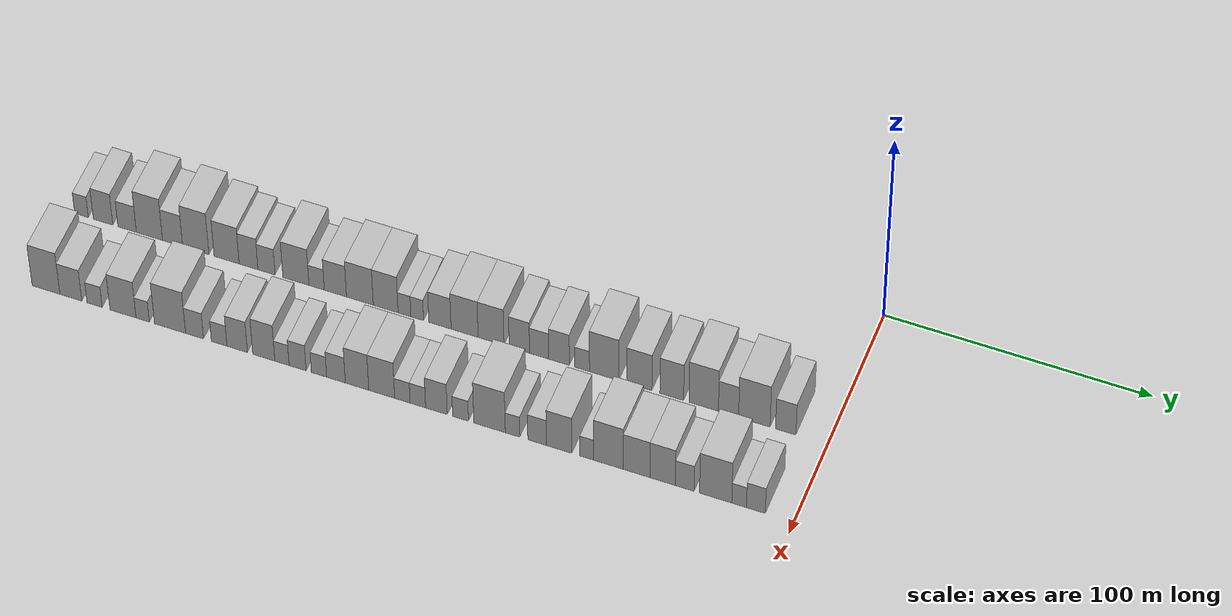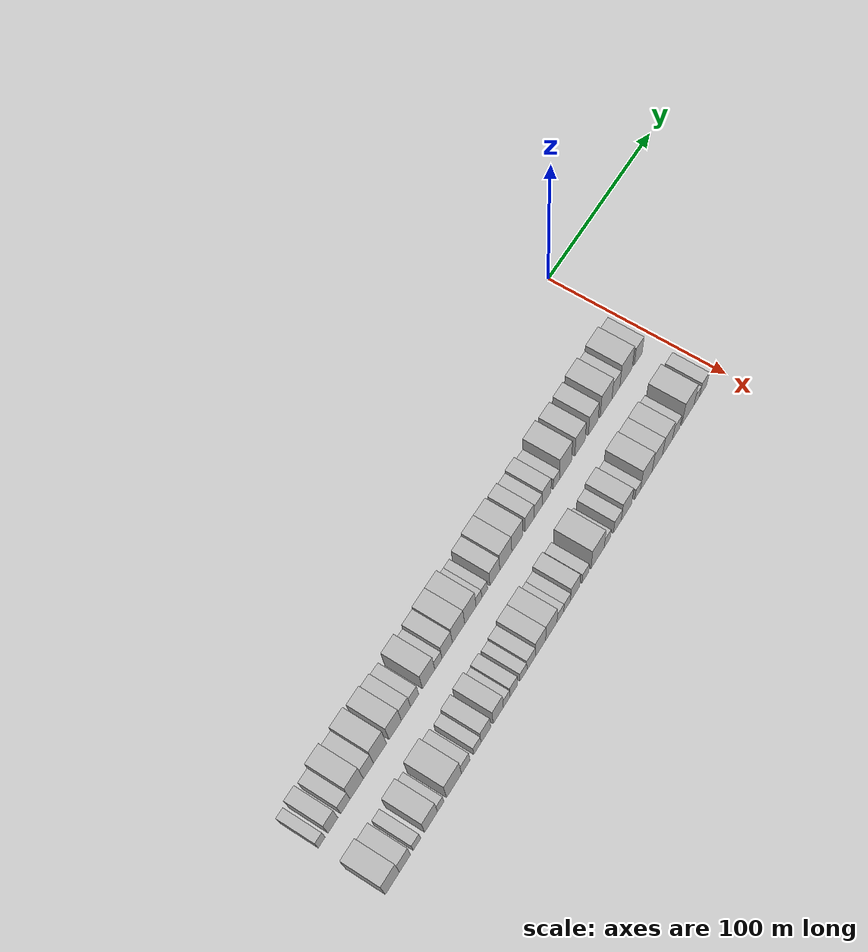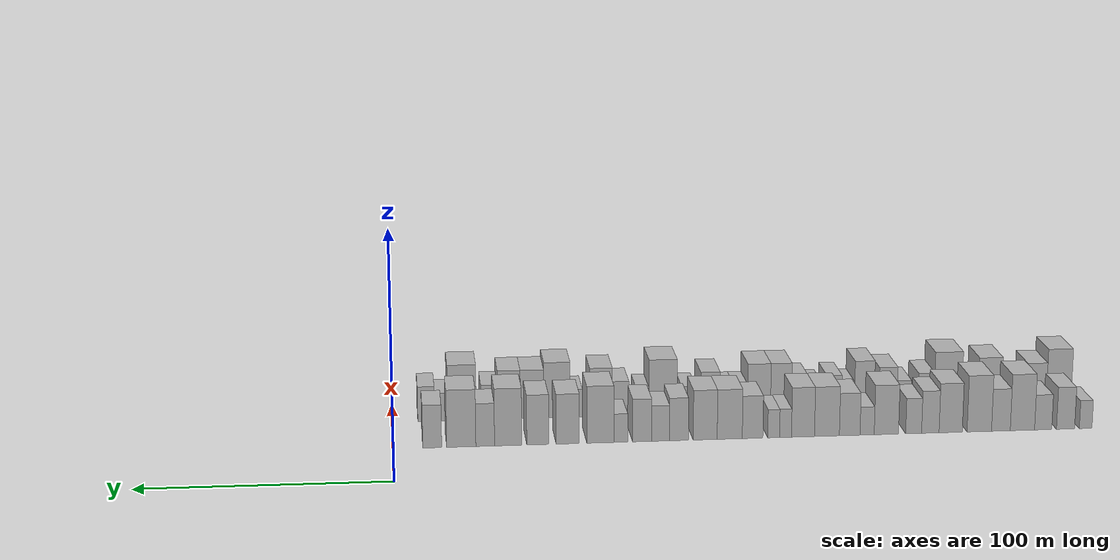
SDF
<sdf version="1.6">
 <world name="default">
  <model name="building_1">
   <static>1</static>
   <pose>50.0000 -284.3320 0 0.000000 0.000000 0.000000</pose>
   <link name="link">
    <pose>0 0 6.00 0 0 0</pose>
    <collision name="collision"><geometry><box><size>20.0000 5.3359 12.0000</size></box></geometry></collision>
    <visual name="visual">
     <cast_shadows>0</cast_shadows>
     <geometry><box><size>20.0000 5.3359 12.0000</size></box></geometry>
     <material>
      <script>
       <uri>model://HANNAS_wall/materials/scripts</uri>
       <uri>model://HANNAS_wall/materials/textures</uri>
       <name>vrc/HANNAS_wall</name>
      </script>
     </material>
    </visual>
   </link>
  </model>
  <model name="building_2">
   <static>1</static>
   <pose>50.0000 -275.8561 0 0.000000 0.000000 0.000000</pose>
   <link name="link">
    <pose>0 0 9.00 0 0 0</pose>
    <collision name="collision"><geometry><box><size>20.0000 7.6160 18.0000</size></box></geometry></collision>
    <visual name="visual">
     <cast_shadows>0</cast_shadows>
     <geometry><box><size>20.0000 7.6160 18.0000</size></box></geometry>
     <material>
      <script>
       <uri>model://HANNAS_wall/materials/scripts</uri>
       <uri>model://HANNAS_wall/materials/textures</uri>
       <name>vrc/HANNAS_wall</name>
      </script>
     </material>
    </visual>
   </link>
  </model>
  <model name="building_3">
   <static>1</static>
   <pose>50.0000 -266.4450 0 0.000000 0.000000 0.000000</pose>
   <link name="link">
    <pose>0 0 7.50 0 0 0</pose>
    <collision name="collision"><geometry><box><size>20.0000 7.2062 15.0000</size></box></geometry></collision>
    <visual name="visual">
     <cast_shadows>0</cast_shadows>
     <geometry><box><size>20.0000 7.2062 15.0000</size></box></geometry>
     <material>
      <script>
       <uri>model://HANNAS_wall/materials/scripts</uri>
       <uri>model://HANNAS_wall/materials/textures</uri>
       <name>vrc/HANNAS_wall</name>
      </script>
     </material>
    </visual>
   </link>
  </model>
  <model name="building_4">
   <static>1</static>
   <pose>50.0000 -257.7383 0 0.000000 0.000000 0.000000</pose>
   <link name="link">
    <pose>0 0 12.00 0 0 0</pose>
    <collision name="collision"><geometry><box><size>20.0000 10.2073 24.0000</size></box></geometry></collision>
    <visual name="visual">
     <cast_shadows>0</cast_shadows>
     <geometry><box><size>20.0000 10.2073 24.0000</size></box></geometry>
     <material>
      <script>
       <uri>model://HANNAS_wall/materials/scripts</uri>
       <uri>model://HANNAS_wall/materials/textures</uri>
       <name>vrc/HANNAS_wall</name>
      </script>
     </material>
    </visual>
   </link>
  </model>
  <model name="building_5">
   <static>1</static>
   <pose>50.0000 -248.7134 0 0.000000 0.000000 0.000000</pose>
   <link name="link">
    <pose>0 0 9.00 0 0 0</pose>
    <collision name="collision"><geometry><box><size>20.0000 7.8425 18.0000</size></box></geometry></collision>
    <visual name="visual">
     <cast_shadows>0</cast_shadows>
     <geometry><box><size>20.0000 7.8425 18.0000</size></box></geometry>
     <material>
      <script>
       <uri>model://HANNAS_wall/materials/scripts</uri>
       <uri>model://HANNAS_wall/materials/textures</uri>
       <name>vrc/HANNAS_wall</name>
      </script>
     </material>
    </visual>
   </link>
  </model>
  <model name="building_6">
   <static>1</static>
   <pose>50.0000 -239.6760 0 0.000000 0.000000 0.000000</pose>
   <link name="link">
    <pose>0 0 12.00 0 0 0</pose>
    <collision name="collision"><geometry><box><size>20.0000 10.2323 24.0000</size></box></geometry></collision>
    <visual name="visual">
     <cast_shadows>0</cast_shadows>
     <geometry><box><size>20.0000 10.2323 24.0000</size></box></geometry>
     <material>
      <script>
       <uri>model://HANNAS_wall/materials/scripts</uri>
       <uri>model://HANNAS_wall/materials/textures</uri>
       <name>vrc/HANNAS_wall</name>
      </script>
     </material>
    </visual>
   </link>
  </model>
  <model name="building_7">
   <static>1</static>
   <pose>50.0000 -227.7089 0 0.000000 0.000000 0.000000</pose>
   <link name="link">
    <pose>0 0 10.50 0 0 0</pose>
    <collision name="collision"><geometry><box><size>20.0000 9.7018 21.0000</size></box></geometry></collision>
    <visual name="visual">
     <cast_shadows>0</cast_shadows>
     <geometry><box><size>20.0000 9.7018 21.0000</size></box></geometry>
     <material>
      <script>
       <uri>model://HANNAS_wall/materials/scripts</uri>
       <uri>model://HANNAS_wall/materials/textures</uri>
       <name>vrc/HANNAS_wall</name>
      </script>
     </material>
    </visual>
   </link>
  </model>
  <model name="building_8">
   <static>1</static>
   <pose>50.0000 -219.2189 0 0.000000 0.000000 0.000000</pose>
   <link name="link">
    <pose>0 0 9.00 0 0 0</pose>
    <collision name="collision"><geometry><box><size>20.0000 7.2784 18.0000</size></box></geometry></collision>
    <visual name="visual">
     <cast_shadows>0</cast_shadows>
     <geometry><box><size>20.0000 7.2784 18.0000</size></box></geometry>
     <material>
      <script>
       <uri>model://HANNAS_wall/materials/scripts</uri>
       <uri>model://HANNAS_wall/materials/textures</uri>
       <name>vrc/HANNAS_wall</name>
      </script>
     </material>
    </visual>
   </link>
  </model>
  <model name="building_9">
   <static>1</static>
   <pose>50.0000 -212.2704 0 0.000000 0.000000 0.000000</pose>
   <link name="link">
    <pose>0 0 7.50 0 0 0</pose>
    <collision name="collision"><geometry><box><size>20.0000 6.6184 15.0000</size></box></geometry></collision>
    <visual name="visual">
     <cast_shadows>0</cast_shadows>
     <geometry><box><size>20.0000 6.6184 15.0000</size></box></geometry>
     <material>
      <script>
       <uri>model://HANNAS_wall/materials/scripts</uri>
       <uri>model://HANNAS_wall/materials/textures</uri>
       <name>vrc/HANNAS_wall</name>
      </script>
     </material>
    </visual>
   </link>
  </model>
  <model name="building_10">
   <static>1</static>
   <pose>50.0000 -200.9258 0 0.000000 0.000000 0.000000</pose>
   <link name="link">
    <pose>0 0 10.50 0 0 0</pose>
    <collision name="collision"><geometry><box><size>20.0000 10.0709 21.0000</size></box></geometry></collision>
    <visual name="visual">
     <cast_shadows>0</cast_shadows>
     <geometry><box><size>20.0000 10.0709 21.0000</size></box></geometry>
     <material>
      <script>
       <uri>model://HANNAS_wall/materials/scripts</uri>
       <uri>model://HANNAS_wall/materials/textures</uri>
       <name>vrc/HANNAS_wall</name>
      </script>
     </material>
    </visual>
   </link>
  </model>
  <model name="building_11">
   <static>1</static>
   <pose>50.0000 -192.9457 0 0.000000 0.000000 0.000000</pose>
   <link name="link">
    <pose>0 0 6.00 0 0 0</pose>
    <collision name="collision"><geometry><box><size>20.0000 5.8891 12.0000</size></box></geometry></collision>
    <visual name="visual">
     <cast_shadows>0</cast_shadows>
     <geometry><box><size>20.0000 5.8891 12.0000</size></box></geometry>
     <material>
      <script>
       <uri>model://HANNAS_wall/materials/scripts</uri>
       <uri>model://HANNAS_wall/materials/textures</uri>
       <name>vrc/HANNAS_wall</name>
      </script>
     </material>
    </visual>
   </link>
  </model>
  <model name="building_12">
   <static>1</static>
   <pose>50.0000 -185.7282 0 0.000000 0.000000 0.000000</pose>
   <link name="link">
    <pose>0 0 9.00 0 0 0</pose>
    <collision name="collision"><geometry><box><size>20.0000 8.5458 18.0000</size></box></geometry></collision>
    <visual name="visual">
     <cast_shadows>0</cast_shadows>
     <geometry><box><size>20.0000 8.5458 18.0000</size></box></geometry>
     <material>
      <script>
       <uri>model://HANNAS_wall/materials/scripts</uri>
       <uri>model://HANNAS_wall/materials/textures</uri>
       <name>vrc/HANNAS_wall</name>
      </script>
     </material>
    </visual>
   </link>
  </model>
  <model name="building_13">
   <static>1</static>
   <pose>50.0000 -176.3089 0 0.000000 0.000000 0.000000</pose>
   <link name="link">
    <pose>0 0 10.50 0 0 0</pose>
    <collision name="collision"><geometry><box><size>20.0000 10.2928 21.0000</size></box></geometry></collision>
    <visual name="visual">
     <cast_shadows>0</cast_shadows>
     <geometry><box><size>20.0000 10.2928 21.0000</size></box></geometry>
     <material>
      <script>
       <uri>model://HANNAS_wall/materials/scripts</uri>
       <uri>model://HANNAS_wall/materials/textures</uri>
       <name>vrc/HANNAS_wall</name>
      </script>
     </material>
    </visual>
   </link>
  </model>
  <model name="building_14">
   <static>1</static>
   <pose>50.0000 -166.4119 0 0.000000 0.000000 0.000000</pose>
   <link name="link">
    <pose>0 0 10.50 0 0 0</pose>
    <collision name="collision"><geometry><box><size>20.0000 9.5012 21.0000</size></box></geometry></collision>
    <visual name="visual">
     <cast_shadows>0</cast_shadows>
     <geometry><box><size>20.0000 9.5012 21.0000</size></box></geometry>
     <material>
      <script>
       <uri>model://HANNAS_wall/materials/scripts</uri>
       <uri>model://HANNAS_wall/materials/textures</uri>
       <name>vrc/HANNAS_wall</name>
      </script>
     </material>
    </visual>
   </link>
  </model>
  <model name="building_15">
   <static>1</static>
   <pose>50.0000 -159.2189 0 0.000000 0.000000 0.000000</pose>
   <link name="link">
    <pose>0 0 6.00 0 0 0</pose>
    <collision name="collision"><geometry><box><size>20.0000 4.8848 12.0000</size></box></geometry></collision>
    <visual name="visual">
     <cast_shadows>0</cast_shadows>
     <geometry><box><size>20.0000 4.8848 12.0000</size></box></geometry>
     <material>
      <script>
       <uri>model://HANNAS_wall/materials/scripts</uri>
       <uri>model://HANNAS_wall/materials/textures</uri>
       <name>vrc/HANNAS_wall</name>
      </script>
     </material>
    </visual>
   </link>
  </model>
  <model name="building_16">
   <static>1</static>
   <pose>50.0000 -154.3433 0 0.000000 0.000000 0.000000</pose>
   <link name="link">
    <pose>0 0 6.00 0 0 0</pose>
    <collision name="collision"><geometry><box><size>20.0000 4.8665 12.0000</size></box></geometry></collision>
    <visual name="visual">
     <cast_shadows>0</cast_shadows>
     <geometry><box><size>20.0000 4.8665 12.0000</size></box></geometry>
     <material>
      <script>
       <uri>model://HANNAS_wall/materials/scripts</uri>
       <uri>model://HANNAS_wall/materials/textures</uri>
       <name>vrc/HANNAS_wall</name>
      </script>
     </material>
    </visual>
   </link>
  </model>
  <model name="building_17">
   <static>1</static>
   <pose>50.0000 -145.6713 0 0.000000 0.000000 0.000000</pose>
   <link name="link">
    <pose>0 0 9.00 0 0 0</pose>
    <collision name="collision"><geometry><box><size>20.0000 8.4777 18.0000</size></box></geometry></collision>
    <visual name="visual">
     <cast_shadows>0</cast_shadows>
     <geometry><box><size>20.0000 8.4777 18.0000</size></box></geometry>
     <material>
      <script>
       <uri>model://HANNAS_wall/materials/scripts</uri>
       <uri>model://HANNAS_wall/materials/textures</uri>
       <name>vrc/HANNAS_wall</name>
      </script>
     </material>
    </visual>
   </link>
  </model>
  <model name="building_18">
   <static>1</static>
   <pose>50.0000 -136.2820 0 0.000000 0.000000 0.000000</pose>
   <link name="link">
    <pose>0 0 10.50 0 0 0</pose>
    <collision name="collision"><geometry><box><size>20.0000 10.3009 21.0000</size></box></geometry></collision>
    <visual name="visual">
     <cast_shadows>0</cast_shadows>
     <geometry><box><size>20.0000 10.3009 21.0000</size></box></geometry>
     <material>
      <script>
       <uri>model://HANNAS_wall/materials/scripts</uri>
       <uri>model://HANNAS_wall/materials/textures</uri>
       <name>vrc/HANNAS_wall</name>
      </script>
     </material>
    </visual>
   </link>
  </model>
  <model name="building_19">
   <static>1</static>
   <pose>50.0000 -126.2274 0 0.000000 0.000000 0.000000</pose>
   <link name="link">
    <pose>0 0 10.50 0 0 0</pose>
    <collision name="collision"><geometry><box><size>20.0000 9.8082 21.0000</size></box></geometry></collision>
    <visual name="visual">
     <cast_shadows>0</cast_shadows>
     <geometry><box><size>20.0000 9.8082 21.0000</size></box></geometry>
     <material>
      <script>
       <uri>model://HANNAS_wall/materials/scripts</uri>
       <uri>model://HANNAS_wall/materials/textures</uri>
       <name>vrc/HANNAS_wall</name>
      </script>
     </material>
    </visual>
   </link>
  </model>
  <model name="building_20">
   <static>1</static>
   <pose>50.0000 -115.4698 0 0.000000 0.000000 0.000000</pose>
   <link name="link">
    <pose>0 0 9.00 0 0 0</pose>
    <collision name="collision"><geometry><box><size>20.0000 7.7070 18.0000</size></box></geometry></collision>
    <visual name="visual">
     <cast_shadows>0</cast_shadows>
     <geometry><box><size>20.0000 7.7070 18.0000</size></box></geometry>
     <material>
      <script>
       <uri>model://HANNAS_wall/materials/scripts</uri>
       <uri>model://HANNAS_wall/materials/textures</uri>
       <name>vrc/HANNAS_wall</name>
      </script>
     </material>
    </visual>
   </link>
  </model>
  <model name="building_21">
   <static>1</static>
   <pose>50.0000 -107.9874 0 0.000000 0.000000 0.000000</pose>
   <link name="link">
    <pose>0 0 7.50 0 0 0</pose>
    <collision name="collision"><geometry><box><size>20.0000 7.2578 15.0000</size></box></geometry></collision>
    <visual name="visual">
     <cast_shadows>0</cast_shadows>
     <geometry><box><size>20.0000 7.2578 15.0000</size></box></geometry>
     <material>
      <script>
       <uri>model://HANNAS_wall/materials/scripts</uri>
       <uri>model://HANNAS_wall/materials/textures</uri>
       <name>vrc/HANNAS_wall</name>
      </script>
     </material>
    </visual>
   </link>
  </model>
  <model name="building_22">
   <static>1</static>
   <pose>50.0000 -100.4647 0 0.000000 0.000000 0.000000</pose>
   <link name="link">
    <pose>0 0 9.00 0 0 0</pose>
    <collision name="collision"><geometry><box><size>20.0000 7.7876 18.0000</size></box></geometry></collision>
    <visual name="visual">
     <cast_shadows>0</cast_shadows>
     <geometry><box><size>20.0000 7.7876 18.0000</size></box></geometry>
     <material>
      <script>
       <uri>model://HANNAS_wall/materials/scripts</uri>
       <uri>model://HANNAS_wall/materials/textures</uri>
       <name>vrc/HANNAS_wall</name>
      </script>
     </material>
    </visual>
   </link>
  </model>
  <model name="building_23">
   <static>1</static>
   <pose>50.0000 -91.7634 0 0.000000 0.000000 0.000000</pose>
   <link name="link">
    <pose>0 0 6.00 0 0 0</pose>
    <collision name="collision"><geometry><box><size>20.0000 5.6151 12.0000</size></box></geometry></collision>
    <visual name="visual">
     <cast_shadows>0</cast_shadows>
     <geometry><box><size>20.0000 5.6151 12.0000</size></box></geometry>
     <material>
      <script>
       <uri>model://HANNAS_wall/materials/scripts</uri>
       <uri>model://HANNAS_wall/materials/textures</uri>
       <name>vrc/HANNAS_wall</name>
      </script>
     </material>
    </visual>
   </link>
  </model>
  <model name="building_24">
   <static>1</static>
   <pose>50.0000 -83.4513 0 0.000000 0.000000 0.000000</pose>
   <link name="link">
    <pose>0 0 12.00 0 0 0</pose>
    <collision name="collision"><geometry><box><size>20.0000 11.0090 24.0000</size></box></geometry></collision>
    <visual name="visual">
     <cast_shadows>0</cast_shadows>
     <geometry><box><size>20.0000 11.0090 24.0000</size></box></geometry>
     <material>
      <script>
       <uri>model://HANNAS_wall/materials/scripts</uri>
       <uri>model://HANNAS_wall/materials/textures</uri>
       <name>vrc/HANNAS_wall</name>
      </script>
     </material>
    </visual>
   </link>
  </model>
  <model name="building_25">
   <static>1</static>
   <pose>50.0000 -70.2266 0 0.000000 0.000000 0.000000</pose>
   <link name="link">
    <pose>0 0 10.50 0 0 0</pose>
    <collision name="collision"><geometry><box><size>20.0000 9.4404 21.0000</size></box></geometry></collision>
    <visual name="visual">
     <cast_shadows>0</cast_shadows>
     <geometry><box><size>20.0000 9.4404 21.0000</size></box></geometry>
     <material>
      <script>
       <uri>model://HANNAS_wall/materials/scripts</uri>
       <uri>model://HANNAS_wall/materials/textures</uri>
       <name>vrc/HANNAS_wall</name>
      </script>
     </material>
    </visual>
   </link>
  </model>
  <model name="building_26">
   <static>1</static>
   <pose>50.0000 -58.0610 0 0.000000 0.000000 0.000000</pose>
   <link name="link">
    <pose>0 0 10.50 0 0 0</pose>
    <collision name="collision"><geometry><box><size>20.0000 8.8907 21.0000</size></box></geometry></collision>
    <visual name="visual">
     <cast_shadows>0</cast_shadows>
     <geometry><box><size>20.0000 8.8907 21.0000</size></box></geometry>
     <material>
      <script>
       <uri>model://HANNAS_wall/materials/scripts</uri>
       <uri>model://HANNAS_wall/materials/textures</uri>
       <name>vrc/HANNAS_wall</name>
      </script>
     </material>
    </visual>
   </link>
  </model>
  <model name="building_27">
   <static>1</static>
   <pose>50.0000 -46.1126 0 0.000000 0.000000 0.000000</pose>
   <link name="link">
    <pose>0 0 12.00 0 0 0</pose>
    <collision name="collision"><geometry><box><size>20.0000 11.0061 24.0000</size></box></geometry></collision>
    <visual name="visual">
     <cast_shadows>0</cast_shadows>
     <geometry><box><size>20.0000 11.0061 24.0000</size></box></geometry>
     <material>
      <script>
       <uri>model://HANNAS_wall/materials/scripts</uri>
       <uri>model://HANNAS_wall/materials/textures</uri>
       <name>vrc/HANNAS_wall</name>
      </script>
     </material>
    </visual>
   </link>
  </model>
  <model name="building_28">
   <static>1</static>
   <pose>50.0000 -36.8444 0 0.000000 0.000000 0.000000</pose>
   <link name="link">
    <pose>0 0 9.00 0 0 0</pose>
    <collision name="collision"><geometry><box><size>20.0000 7.5302 18.0000</size></box></geometry></collision>
    <visual name="visual">
     <cast_shadows>0</cast_shadows>
     <geometry><box><size>20.0000 7.5302 18.0000</size></box></geometry>
     <material>
      <script>
       <uri>model://HANNAS_wall/materials/scripts</uri>
       <uri>model://HANNAS_wall/materials/textures</uri>
       <name>vrc/HANNAS_wall</name>
      </script>
     </material>
    </visual>
   </link>
  </model>
  <model name="building_29">
   <static>1</static>
   <pose>50.0000 -27.2090 0 0.000000 0.000000 0.000000</pose>
   <link name="link">
    <pose>0 0 12.00 0 0 0</pose>
    <collision name="collision"><geometry><box><size>20.0000 11.7405 24.0000</size></box></geometry></collision>
    <visual name="visual">
     <cast_shadows>0</cast_shadows>
     <geometry><box><size>20.0000 11.7405 24.0000</size></box></geometry>
     <material>
      <script>
       <uri>model://HANNAS_wall/materials/scripts</uri>
       <uri>model://HANNAS_wall/materials/textures</uri>
       <name>vrc/HANNAS_wall</name>
      </script>
     </material>
    </visual>
   </link>
  </model>
  <model name="building_30">
   <static>1</static>
   <pose>50.0000 -15.5463 0 0.000000 0.000000 0.000000</pose>
   <link name="link">
    <pose>0 0 9.00 0 0 0</pose>
    <collision name="collision"><geometry><box><size>20.0000 7.5850 18.0000</size></box></geometry></collision>
    <visual name="visual">
     <cast_shadows>0</cast_shadows>
     <geometry><box><size>20.0000 7.5850 18.0000</size></box></geometry>
     <material>
      <script>
       <uri>model://HANNAS_wall/materials/scripts</uri>
       <uri>model://HANNAS_wall/materials/textures</uri>
       <name>vrc/HANNAS_wall</name>
      </script>
     </material>
    </visual>
   </link>
  </model>
  <model name="building_60">
   <static>1</static>
   <pose>85.0000 -282.6183 0 0.000000 0.000000 0.000000</pose>
   <link name="link">
    <pose>0 0 12.00 0 0 0</pose>
    <collision name="collision"><geometry><box><size>20.0000 10.7634 24.0000</size></box></geometry></collision>
    <visual name="visual">
     <cast_shadows>0</cast_shadows>
     <geometry><box><size>20.0000 10.7634 24.0000</size></box></geometry>
     <material>
      <script>
       <uri>model://HANNAS_wall/materials/scripts</uri>
       <uri>model://HANNAS_wall/materials/textures</uri>
       <name>vrc/HANNAS_wall</name>
      </script>
     </material>
    </visual>
   </link>
  </model>
  <model name="building_61">
   <static>1</static>
   <pose>85.0000 -272.9720 0 0.000000 0.000000 0.000000</pose>
   <link name="link">
    <pose>0 0 9.00 0 0 0</pose>
    <collision name="collision"><geometry><box><size>20.0000 8.5294 18.0000</size></box></geometry></collision>
    <visual name="visual">
     <cast_shadows>0</cast_shadows>
     <geometry><box><size>20.0000 8.5294 18.0000</size></box></geometry>
     <material>
      <script>
       <uri>model://HANNAS_wall/materials/scripts</uri>
       <uri>model://HANNAS_wall/materials/textures</uri>
       <name>vrc/HANNAS_wall</name>
      </script>
     </material>
    </visual>
   </link>
  </model>
  <model name="building_62">
   <static>1</static>
   <pose>85.0000 -263.7568 0 0.000000 0.000000 0.000000</pose>
   <link name="link">
    <pose>0 0 6.00 0 0 0</pose>
    <collision name="collision"><geometry><box><size>20.0000 5.9010 12.0000</size></box></geometry></collision>
    <visual name="visual">
     <cast_shadows>0</cast_shadows>
     <geometry><box><size>20.0000 5.9010 12.0000</size></box></geometry>
     <material>
      <script>
       <uri>model://HANNAS_wall/materials/scripts</uri>
       <uri>model://HANNAS_wall/materials/textures</uri>
       <name>vrc/HANNAS_wall</name>
      </script>
     </material>
    </visual>
   </link>
  </model>
  <model name="building_63">
   <static>1</static>
   <pose>85.0000 -252.7707 0 0.000000 0.000000 0.000000</pose>
   <link name="link">
    <pose>0 0 10.50 0 0 0</pose>
    <collision name="collision"><geometry><box><size>20.0000 10.0710 21.0000</size></box></geometry></collision>
    <visual name="visual">
     <cast_shadows>0</cast_shadows>
     <geometry><box><size>20.0000 10.0710 21.0000</size></box></geometry>
     <material>
      <script>
       <uri>model://HANNAS_wall/materials/scripts</uri>
       <uri>model://HANNAS_wall/materials/textures</uri>
       <name>vrc/HANNAS_wall</name>
      </script>
     </material>
    </visual>
   </link>
  </model>
  <model name="building_64">
   <static>1</static>
   <pose>85.0000 -245.1616 0 0.000000 0.000000 0.000000</pose>
   <link name="link">
    <pose>0 0 6.00 0 0 0</pose>
    <collision name="collision"><geometry><box><size>20.0000 5.1472 12.0000</size></box></geometry></collision>
    <visual name="visual">
     <cast_shadows>0</cast_shadows>
     <geometry><box><size>20.0000 5.1472 12.0000</size></box></geometry>
     <material>
      <script>
       <uri>model://HANNAS_wall/materials/scripts</uri>
       <uri>model://HANNAS_wall/materials/textures</uri>
       <name>vrc/HANNAS_wall</name>
      </script>
     </material>
    </visual>
   </link>
  </model>
  <model name="building_65">
   <static>1</static>
   <pose>85.0000 -234.6139 0 0.000000 0.000000 0.000000</pose>
   <link name="link">
    <pose>0 0 12.00 0 0 0</pose>
    <collision name="collision"><geometry><box><size>20.0000 11.9482 24.0000</size></box></geometry></collision>
    <visual name="visual">
     <cast_shadows>0</cast_shadows>
     <geometry><box><size>20.0000 11.9482 24.0000</size></box></geometry>
     <material>
      <script>
       <uri>model://HANNAS_wall/materials/scripts</uri>
       <uri>model://HANNAS_wall/materials/textures</uri>
       <name>vrc/HANNAS_wall</name>
      </script>
     </material>
    </visual>
   </link>
  </model>
  <model name="building_66">
   <static>1</static>
   <pose>85.0000 -225.1788 0 0.000000 0.000000 0.000000</pose>
   <link name="link">
    <pose>0 0 7.50 0 0 0</pose>
    <collision name="collision"><geometry><box><size>20.0000 6.9221 15.0000</size></box></geometry></collision>
    <visual name="visual">
     <cast_shadows>0</cast_shadows>
     <geometry><box><size>20.0000 6.9221 15.0000</size></box></geometry>
     <material>
      <script>
       <uri>model://HANNAS_wall/materials/scripts</uri>
       <uri>model://HANNAS_wall/materials/textures</uri>
       <name>vrc/HANNAS_wall</name>
      </script>
     </material>
    </visual>
   </link>
  </model>
  <model name="building_67">
   <static>1</static>
   <pose>85.0000 -215.7252 0 0.000000 0.000000 0.000000</pose>
   <link name="link">
    <pose>0 0 6.00 0 0 0</pose>
    <collision name="collision"><geometry><box><size>20.0000 5.9850 12.0000</size></box></geometry></collision>
    <visual name="visual">
     <cast_shadows>0</cast_shadows>
     <geometry><box><size>20.0000 5.9850 12.0000</size></box></geometry>
     <material>
      <script>
       <uri>model://HANNAS_wall/materials/scripts</uri>
       <uri>model://HANNAS_wall/materials/textures</uri>
       <name>vrc/HANNAS_wall</name>
      </script>
     </material>
    </visual>
   </link>
  </model>
  <model name="building_68">
   <static>1</static>
   <pose>85.0000 -208.7974 0 0.000000 0.000000 0.000000</pose>
   <link name="link">
    <pose>0 0 9.00 0 0 0</pose>
    <collision name="collision"><geometry><box><size>20.0000 7.8705 18.0000</size></box></geometry></collision>
    <visual name="visual">
     <cast_shadows>0</cast_shadows>
     <geometry><box><size>20.0000 7.8705 18.0000</size></box></geometry>
     <material>
      <script>
       <uri>model://HANNAS_wall/materials/scripts</uri>
       <uri>model://HANNAS_wall/materials/textures</uri>
       <name>vrc/HANNAS_wall</name>
      </script>
     </material>
    </visual>
   </link>
  </model>
  <model name="building_69">
   <static>1</static>
   <pose>85.0000 -198.6296 0 0.000000 0.000000 0.000000</pose>
   <link name="link">
    <pose>0 0 10.50 0 0 0</pose>
    <collision name="collision"><geometry><box><size>20.0000 8.4652 21.0000</size></box></geometry></collision>
    <visual name="visual">
     <cast_shadows>0</cast_shadows>
     <geometry><box><size>20.0000 8.4652 21.0000</size></box></geometry>
     <material>
      <script>
       <uri>model://HANNAS_wall/materials/scripts</uri>
       <uri>model://HANNAS_wall/materials/textures</uri>
       <name>vrc/HANNAS_wall</name>
      </script>
     </material>
    </visual>
   </link>
  </model>
  <model name="building_70">
   <static>1</static>
   <pose>85.0000 -191.6746 0 0.000000 0.000000 0.000000</pose>
   <link name="link">
    <pose>0 0 6.00 0 0 0</pose>
    <collision name="collision"><geometry><box><size>20.0000 5.4448 12.0000</size></box></geometry></collision>
    <visual name="visual">
     <cast_shadows>0</cast_shadows>
     <geometry><box><size>20.0000 5.4448 12.0000</size></box></geometry>
     <material>
      <script>
       <uri>model://HANNAS_wall/materials/scripts</uri>
       <uri>model://HANNAS_wall/materials/textures</uri>
       <name>vrc/HANNAS_wall</name>
      </script>
     </material>
    </visual>
   </link>
  </model>
  <model name="building_71">
   <static>1</static>
   <pose>85.0000 -185.7089 0 0.000000 0.000000 0.000000</pose>
   <link name="link">
    <pose>0 0 7.50 0 0 0</pose>
    <collision name="collision"><geometry><box><size>20.0000 6.4864 15.0000</size></box></geometry></collision>
    <visual name="visual">
     <cast_shadows>0</cast_shadows>
     <geometry><box><size>20.0000 6.4864 15.0000</size></box></geometry>
     <material>
      <script>
       <uri>model://HANNAS_wall/materials/scripts</uri>
       <uri>model://HANNAS_wall/materials/textures</uri>
       <name>vrc/HANNAS_wall</name>
      </script>
     </material>
    </visual>
   </link>
  </model>
  <model name="building_72">
   <static>1</static>
   <pose>85.0000 -177.5558 0 0.000000 0.000000 0.000000</pose>
   <link name="link">
    <pose>0 0 6.00 0 0 0</pose>
    <collision name="collision"><geometry><box><size>20.0000 5.8199 12.0000</size></box></geometry></collision>
    <visual name="visual">
     <cast_shadows>0</cast_shadows>
     <geometry><box><size>20.0000 5.8199 12.0000</size></box></geometry>
     <material>
      <script>
       <uri>model://HANNAS_wall/materials/scripts</uri>
       <uri>model://HANNAS_wall/materials/textures</uri>
       <name>vrc/HANNAS_wall</name>
      </script>
     </material>
    </visual>
   </link>
  </model>
  <model name="building_73">
   <static>1</static>
   <pose>85.0000 -171.0954 0 0.000000 0.000000 0.000000</pose>
   <link name="link">
    <pose>0 0 7.50 0 0 0</pose>
    <collision name="collision"><geometry><box><size>20.0000 7.1008 15.0000</size></box></geometry></collision>
    <visual name="visual">
     <cast_shadows>0</cast_shadows>
     <geometry><box><size>20.0000 7.1008 15.0000</size></box></geometry>
     <material>
      <script>
       <uri>model://HANNAS_wall/materials/scripts</uri>
       <uri>model://HANNAS_wall/materials/textures</uri>
       <name>vrc/HANNAS_wall</name>
      </script>
     </material>
    </visual>
   </link>
  </model>
  <model name="building_74">
   <static>1</static>
   <pose>85.0000 -163.0825 0 0.000000 0.000000 0.000000</pose>
   <link name="link">
    <pose>0 0 10.50 0 0 0</pose>
    <collision name="collision"><geometry><box><size>20.0000 8.9251 21.0000</size></box></geometry></collision>
    <visual name="visual">
     <cast_shadows>0</cast_shadows>
     <geometry><box><size>20.0000 8.9251 21.0000</size></box></geometry>
     <material>
      <script>
       <uri>model://HANNAS_wall/materials/scripts</uri>
       <uri>model://HANNAS_wall/materials/textures</uri>
       <name>vrc/HANNAS_wall</name>
      </script>
     </material>
    </visual>
   </link>
  </model>
  <model name="building_75">
   <static>1</static>
   <pose>85.0000 -153.7238 0 0.000000 0.000000 0.000000</pose>
   <link name="link">
    <pose>0 0 10.50 0 0 0</pose>
    <collision name="collision"><geometry><box><size>20.0000 9.7922 21.0000</size></box></geometry></collision>
    <visual name="visual">
     <cast_shadows>0</cast_shadows>
     <geometry><box><size>20.0000 9.7922 21.0000</size></box></geometry>
     <material>
      <script>
       <uri>model://HANNAS_wall/materials/scripts</uri>
       <uri>model://HANNAS_wall/materials/textures</uri>
       <name>vrc/HANNAS_wall</name>
      </script>
     </material>
    </visual>
   </link>
  </model>
  <model name="building_76">
   <static>1</static>
   <pose>85.0000 -145.9030 0 0.000000 0.000000 0.000000</pose>
   <link name="link">
    <pose>0 0 6.00 0 0 0</pose>
    <collision name="collision"><geometry><box><size>20.0000 5.8493 12.0000</size></box></geometry></collision>
    <visual name="visual">
     <cast_shadows>0</cast_shadows>
     <geometry><box><size>20.0000 5.8493 12.0000</size></box></geometry>
     <material>
      <script>
       <uri>model://HANNAS_wall/materials/scripts</uri>
       <uri>model://HANNAS_wall/materials/textures</uri>
       <name>vrc/HANNAS_wall</name>
      </script>
     </material>
    </visual>
   </link>
  </model>
  <model name="building_77">
   <static>1</static>
   <pose>85.0000 -140.0533 0 0.000000 0.000000 0.000000</pose>
   <link name="link">
    <pose>0 0 6.00 0 0 0</pose>
    <collision name="collision"><geometry><box><size>20.0000 5.8501 12.0000</size></box></geometry></collision>
    <visual name="visual">
     <cast_shadows>0</cast_shadows>
     <geometry><box><size>20.0000 5.8501 12.0000</size></box></geometry>
     <material>
      <script>
       <uri>model://HANNAS_wall/materials/scripts</uri>
       <uri>model://HANNAS_wall/materials/textures</uri>
       <name>vrc/HANNAS_wall</name>
      </script>
     </material>
    </visual>
   </link>
  </model>
  <model name="building_78">
   <static>1</static>
   <pose>85.0000 -133.0357 0 0.000000 0.000000 0.000000</pose>
   <link name="link">
    <pose>0 0 9.00 0 0 0</pose>
    <collision name="collision"><geometry><box><size>20.0000 8.1851 18.0000</size></box></geometry></collision>
    <visual name="visual">
     <cast_shadows>0</cast_shadows>
     <geometry><box><size>20.0000 8.1851 18.0000</size></box></geometry>
     <material>
      <script>
       <uri>model://HANNAS_wall/materials/scripts</uri>
       <uri>model://HANNAS_wall/materials/textures</uri>
       <name>vrc/HANNAS_wall</name>
      </script>
     </material>
    </visual>
   </link>
  </model>
  <model name="building_79">
   <static>1</static>
   <pose>85.0000 -123.9470 0 0.000000 0.000000 0.000000</pose>
   <link name="link">
    <pose>0 0 6.00 0 0 0</pose>
    <collision name="collision"><geometry><box><size>20.0000 5.9923 12.0000</size></box></geometry></collision>
    <visual name="visual">
     <cast_shadows>0</cast_shadows>
     <geometry><box><size>20.0000 5.9923 12.0000</size></box></geometry>
     <material>
      <script>
       <uri>model://HANNAS_wall/materials/scripts</uri>
       <uri>model://HANNAS_wall/materials/textures</uri>
       <name>vrc/HANNAS_wall</name>
      </script>
     </material>
    </visual>
   </link>
  </model>
  <model name="building_80">
   <static>1</static>
   <pose>85.0000 -113.0246 0 0.000000 0.000000 0.000000</pose>
   <link name="link">
    <pose>0 0 12.00 0 0 0</pose>
    <collision name="collision"><geometry><box><size>20.0000 11.8526 24.0000</size></box></geometry></collision>
    <visual name="visual">
     <cast_shadows>0</cast_shadows>
     <geometry><box><size>20.0000 11.8526 24.0000</size></box></geometry>
     <material>
      <script>
       <uri>model://HANNAS_wall/materials/scripts</uri>
       <uri>model://HANNAS_wall/materials/textures</uri>
       <name>vrc/HANNAS_wall</name>
      </script>
     </material>
    </visual>
   </link>
  </model>
  <model name="building_81">
   <static>1</static>
   <pose>85.0000 -104.3825 0 0.000000 0.000000 0.000000</pose>
   <link name="link">
    <pose>0 0 6.00 0 0 0</pose>
    <collision name="collision"><geometry><box><size>20.0000 5.4315 12.0000</size></box></geometry></collision>
    <visual name="visual">
     <cast_shadows>0</cast_shadows>
     <geometry><box><size>20.0000 5.4315 12.0000</size></box></geometry>
     <material>
      <script>
       <uri>model://HANNAS_wall/materials/scripts</uri>
       <uri>model://HANNAS_wall/materials/textures</uri>
       <name>vrc/HANNAS_wall</name>
      </script>
     </material>
    </visual>
   </link>
  </model>
  <model name="building_82">
   <static>1</static>
   <pose>85.0000 -95.1820 0 0.000000 0.000000 0.000000</pose>
   <link name="link">
    <pose>0 0 7.50 0 0 0</pose>
    <collision name="collision"><geometry><box><size>20.0000 6.9696 15.0000</size></box></geometry></collision>
    <visual name="visual">
     <cast_shadows>0</cast_shadows>
     <geometry><box><size>20.0000 6.9696 15.0000</size></box></geometry>
     <material>
      <script>
       <uri>model://HANNAS_wall/materials/scripts</uri>
       <uri>model://HANNAS_wall/materials/textures</uri>
       <name>vrc/HANNAS_wall</name>
      </script>
     </material>
    </visual>
   </link>
  </model>
  <model name="building_83">
   <static>1</static>
   <pose>85.0000 -86.9440 0 0.000000 0.000000 0.000000</pose>
   <link name="link">
    <pose>0 0 10.50 0 0 0</pose>
    <collision name="collision"><geometry><box><size>20.0000 9.5066 21.0000</size></box></geometry></collision>
    <visual name="visual">
     <cast_shadows>0</cast_shadows>
     <geometry><box><size>20.0000 9.5066 21.0000</size></box></geometry>
     <material>
      <script>
       <uri>model://HANNAS_wall/materials/scripts</uri>
       <uri>model://HANNAS_wall/materials/textures</uri>
       <name>vrc/HANNAS_wall</name>
      </script>
     </material>
    </visual>
   </link>
  </model>
  <model name="building_84">
   <static>1</static>
   <pose>85.0000 -76.5993 0 0.000000 0.000000 0.000000</pose>
   <link name="link">
    <pose>0 0 6.00 0 0 0</pose>
    <collision name="collision"><geometry><box><size>20.0000 5.1828 12.0000</size></box></geometry></collision>
    <visual name="visual">
     <cast_shadows>0</cast_shadows>
     <geometry><box><size>20.0000 5.1828 12.0000</size></box></geometry>
     <material>
      <script>
       <uri>model://HANNAS_wall/materials/scripts</uri>
       <uri>model://HANNAS_wall/materials/textures</uri>
       <name>vrc/HANNAS_wall</name>
      </script>
     </material>
    </visual>
   </link>
  </model>
  <model name="building_85">
   <static>1</static>
   <pose>85.0000 -68.5013 0 0.000000 0.000000 0.000000</pose>
   <link name="link">
    <pose>0 0 12.00 0 0 0</pose>
    <collision name="collision"><geometry><box><size>20.0000 11.0131 24.0000</size></box></geometry></collision>
    <visual name="visual">
     <cast_shadows>0</cast_shadows>
     <geometry><box><size>20.0000 11.0131 24.0000</size></box></geometry>
     <material>
      <script>
       <uri>model://HANNAS_wall/materials/scripts</uri>
       <uri>model://HANNAS_wall/materials/textures</uri>
       <name>vrc/HANNAS_wall</name>
      </script>
     </material>
    </visual>
   </link>
  </model>
  <model name="building_86">
   <static>1</static>
   <pose>85.0000 -58.0764 0 0.000000 0.000000 0.000000</pose>
   <link name="link">
    <pose>0 0 10.50 0 0 0</pose>
    <collision name="collision"><geometry><box><size>20.0000 9.8368 21.0000</size></box></geometry></collision>
    <visual name="visual">
     <cast_shadows>0</cast_shadows>
     <geometry><box><size>20.0000 9.8368 21.0000</size></box></geometry>
     <material>
      <script>
       <uri>model://HANNAS_wall/materials/scripts</uri>
       <uri>model://HANNAS_wall/materials/textures</uri>
       <name>vrc/HANNAS_wall</name>
      </script>
     </material>
    </visual>
   </link>
  </model>
  <model name="building_87">
   <static>1</static>
   <pose>85.0000 -48.4231 0 0.000000 0.000000 0.000000</pose>
   <link name="link">
    <pose>0 0 10.50 0 0 0</pose>
    <collision name="collision"><geometry><box><size>20.0000 9.4697 21.0000</size></box></geometry></collision>
    <visual name="visual">
     <cast_shadows>0</cast_shadows>
     <geometry><box><size>20.0000 9.4697 21.0000</size></box></geometry>
     <material>
      <script>
       <uri>model://HANNAS_wall/materials/scripts</uri>
       <uri>model://HANNAS_wall/materials/textures</uri>
       <name>vrc/HANNAS_wall</name>
      </script>
     </material>
    </visual>
   </link>
  </model>
  <model name="building_88">
   <static>1</static>
   <pose>85.0000 -40.2184 0 0.000000 0.000000 0.000000</pose>
   <link name="link">
    <pose>0 0 7.50 0 0 0</pose>
    <collision name="collision"><geometry><box><size>20.0000 6.9398 15.0000</size></box></geometry></collision>
    <visual name="visual">
     <cast_shadows>0</cast_shadows>
     <geometry><box><size>20.0000 6.9398 15.0000</size></box></geometry>
     <material>
      <script>
       <uri>model://HANNAS_wall/materials/scripts</uri>
       <uri>model://HANNAS_wall/materials/textures</uri>
       <name>vrc/HANNAS_wall</name>
      </script>
     </material>
    </visual>
   </link>
  </model>
  <model name="building_89">
   <static>1</static>
   <pose>85.0000 -28.8051 0 0.000000 0.000000 0.000000</pose>
   <link name="link">
    <pose>0 0 12.00 0 0 0</pose>
    <collision name="collision"><geometry><box><size>20.0000 11.8869 24.0000</size></box></geometry></collision>
    <visual name="visual">
     <cast_shadows>0</cast_shadows>
     <geometry><box><size>20.0000 11.8869 24.0000</size></box></geometry>
     <material>
      <script>
       <uri>model://HANNAS_wall/materials/scripts</uri>
       <uri>model://HANNAS_wall/materials/textures</uri>
       <name>vrc/HANNAS_wall</name>
      </script>
     </material>
    </visual>
   </link>
  </model>
  <model name="building_90">
   <static>1</static>
   <pose>85.0000 -20.1417 0 0.000000 0.000000 0.000000</pose>
   <link name="link">
    <pose>0 0 6.00 0 0 0</pose>
    <collision name="collision"><geometry><box><size>20.0000 5.4399 12.0000</size></box></geometry></collision>
    <visual name="visual">
     <cast_shadows>0</cast_shadows>
     <geometry><box><size>20.0000 5.4399 12.0000</size></box></geometry>
     <material>
      <script>
       <uri>model://HANNAS_wall/materials/scripts</uri>
       <uri>model://HANNAS_wall/materials/textures</uri>
       <name>vrc/HANNAS_wall</name>
      </script>
     </material>
    </visual>
   </link>
  </model>
  <model name="building_91">
   <static>1</static>
   <pose>85.0000 -13.9408 0 0.000000 0.000000 0.000000</pose>
   <link name="link">
    <pose>0 0 7.50 0 0 0</pose>
    <collision name="collision"><geometry><box><size>20.0000 6.9619 15.0000</size></box></geometry></collision>
    <visual name="visual">
     <cast_shadows>0</cast_shadows>
     <geometry><box><size>20.0000 6.9619 15.0000</size></box></geometry>
     <material>
      <script>
       <uri>model://HANNAS_wall/materials/scripts</uri>
       <uri>model://HANNAS_wall/materials/textures</uri>
       <name>vrc/HANNAS_wall</name>
      </script>
     </material>
    </visual>
   </link>
  </model>
 </world>
</sdf>
